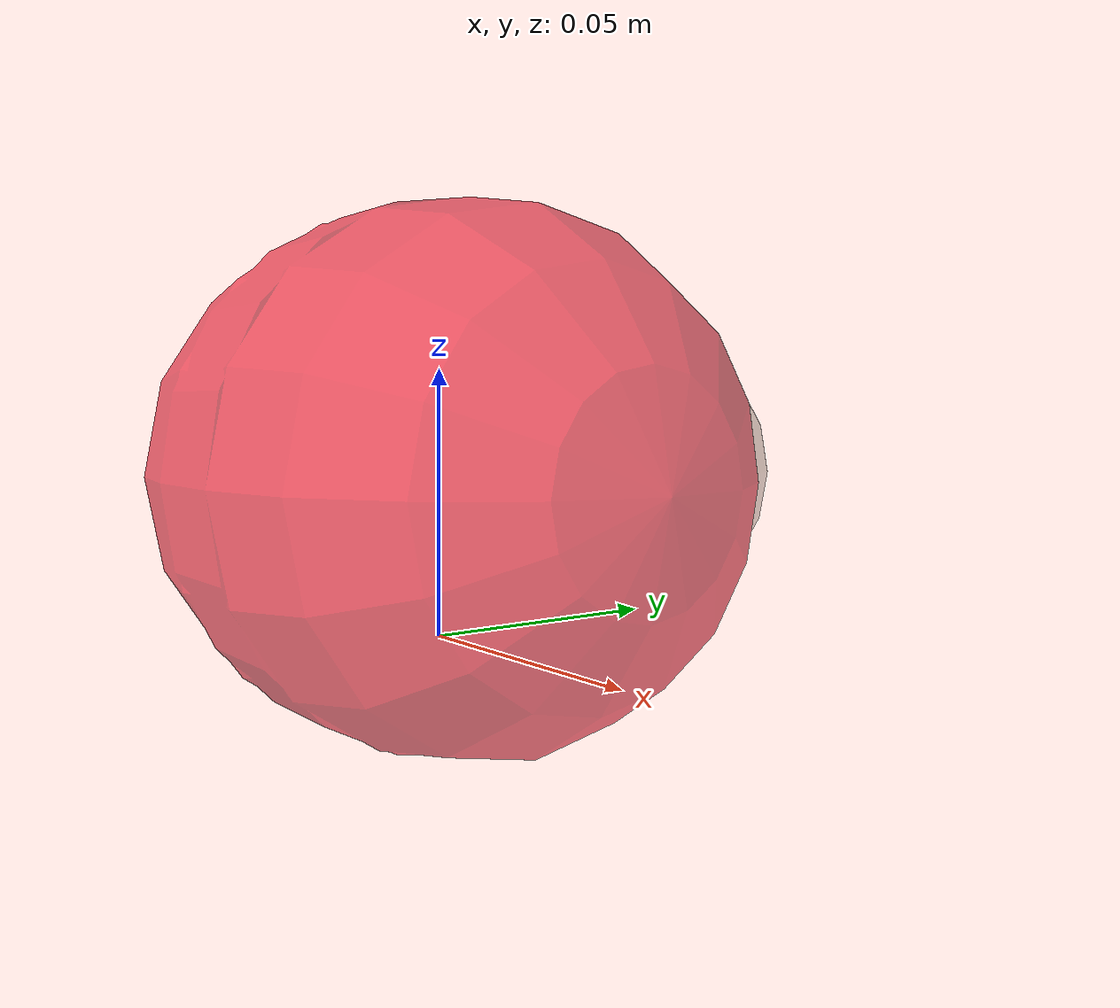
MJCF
<mujoco>
    <worldbody>
        <camera name="maincam" mode= "fixed" fovy="75" euler="0 0 0" pos="0 0 .75"/>
        <body name="particle" pos="0 0 0.03">
            <inertial pos="0 0 0" mass="5" diaginertia="166.667 166.667 166.667"/>
            <geom name="particle_geom" type="capsule" fromto="-0.01 0 0 0.01 0 0" size="0.05" rgba="0.9 0 0.1 0.6" />
            <joint name="ball_x" type="slide" pos="0 0 0" axis="1 0 0" />
            <joint name="ball_y" type="slide" pos="0 0 0" axis="0 1 0" />
            <site name="sensorsurf" pos="0 0.045 0" size=".03 .03 .03" type="ellipsoid" rgba="0.3 0.2 0.1 0.3"/>

        </body>

    </worldbody>

     <sensor>
         <touch name="touchsensor" site="sensorsurf" />
     </sensor>
</mujoco>
